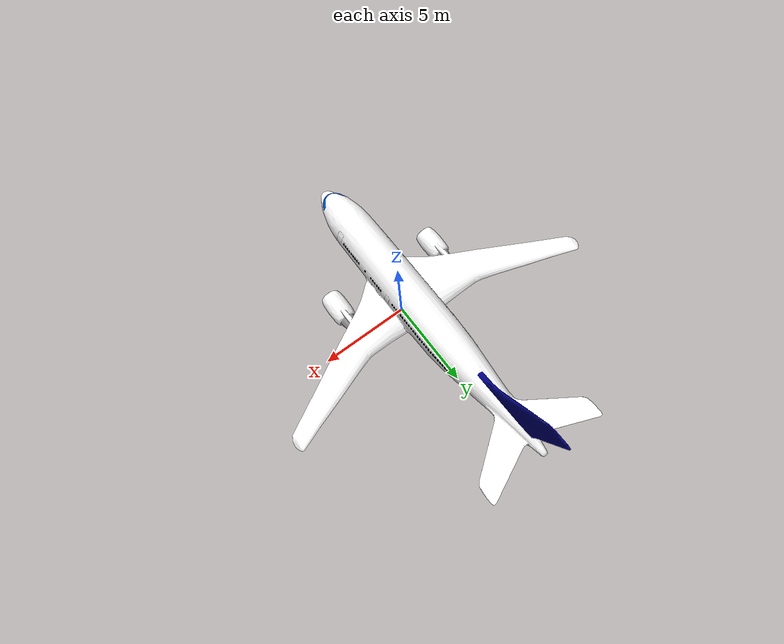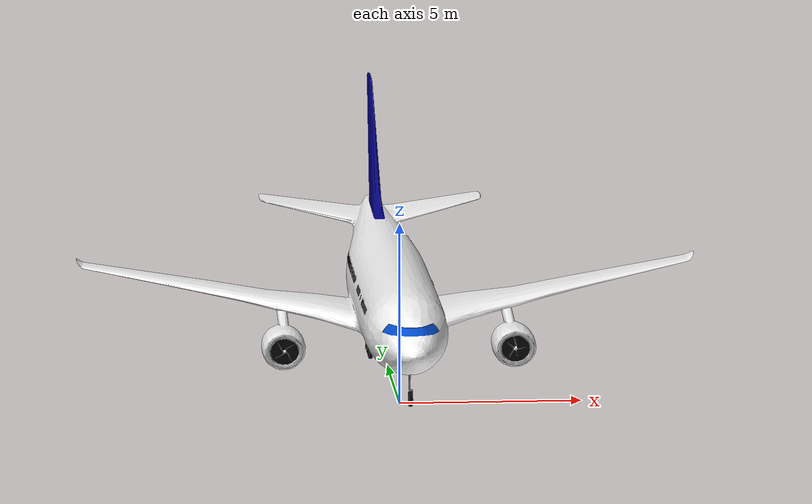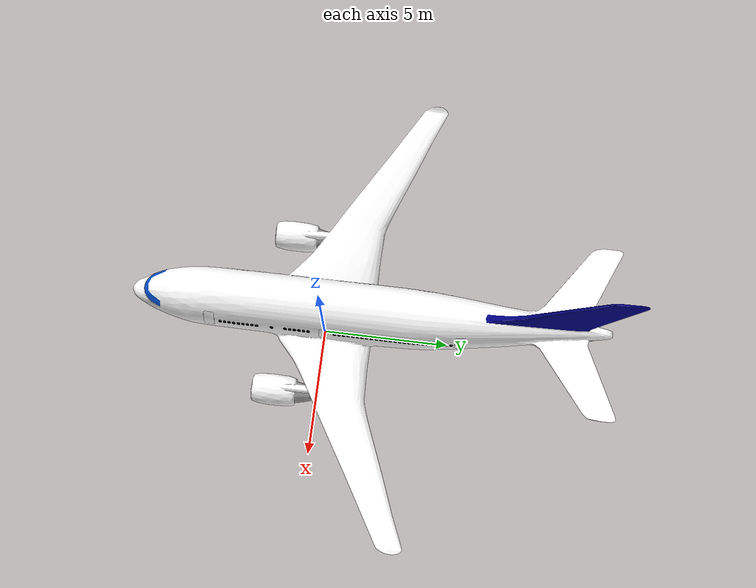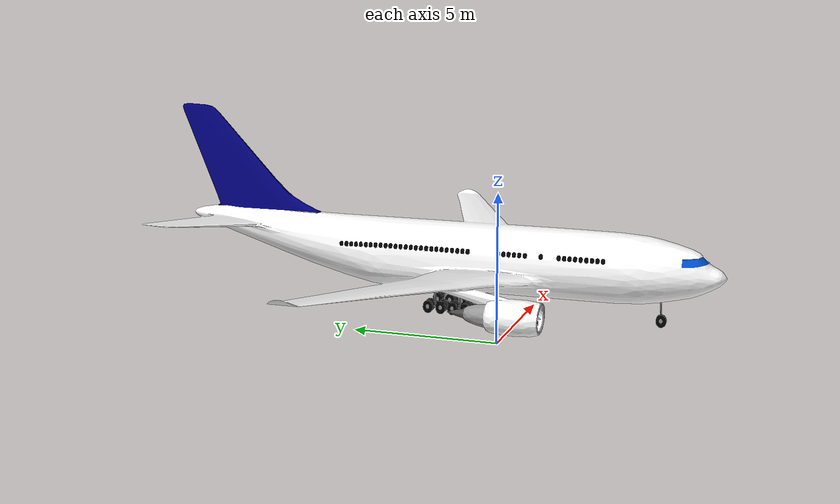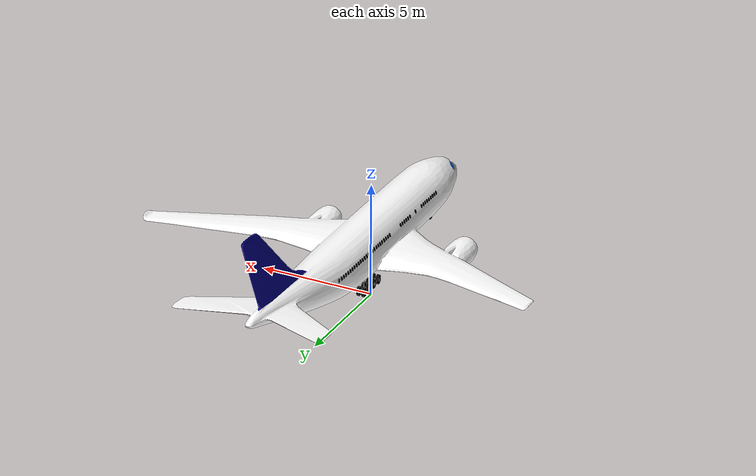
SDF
<?xml version="1.0" ?>
<sdf version="1.5">
  <model name="AirbusA310Small">
    <pose>0 0 1 0 0 0</pose>
    <link name="link">
      <inertial>
	<pose>0 0 0 0 0 0</pose>
        <mass>200.0</mass>
	<inertia>
         <ixx>100.2</ixx>       <!-- for a box: ixx = 0.083 * mass * (y*y + z*z) -->
         <ixy>0.0</ixy>         <!-- for a box: ixy = 0 -->
         <ixz>0.0</ixz>         <!-- for a box: ixz = 0 -->
         <iyy>100.8</iyy>       <!-- for a box: iyy = 0.083 * mass * (x*x + z*z) -->
         <iyz>0.0</iyz>         <!-- for a box: iyz = 0 -->
         <izz>200.6</izz>       <!-- for a box: izz = 0.083 * mass * (x*x + y*y) -->
        </inertia>
      </inertial>
      <visual name="visual">
        <geometry>
          <mesh>
            <uri>model://AirbusA310Small/meshes/AirbusA310Small.dae</uri>
          </mesh>
        </geometry>
      </visual>

      <collision name="collision">
       <geometry>
        <mesh>
         <uri>model://AirbusA310Small/meshes/AirbusA310Small.dae</uri>
        </mesh>
       </geometry>
      </collision>
    </link>
  </model>
</sdf>
